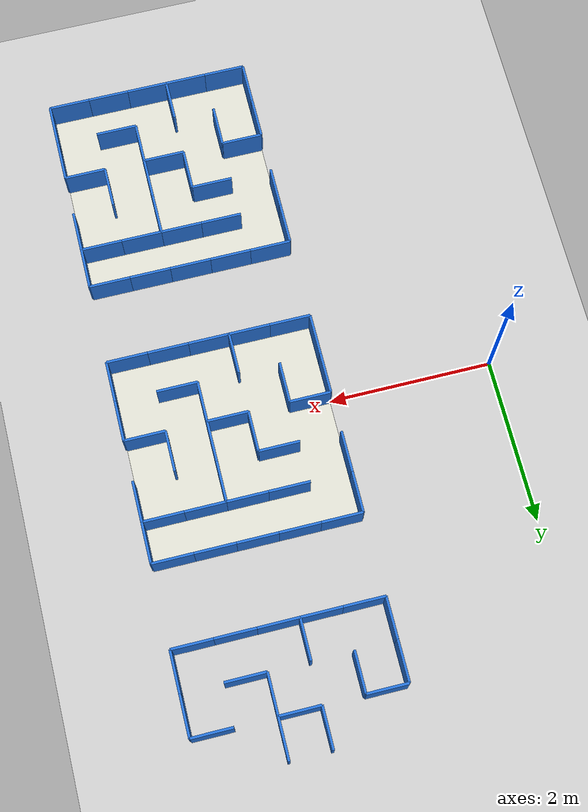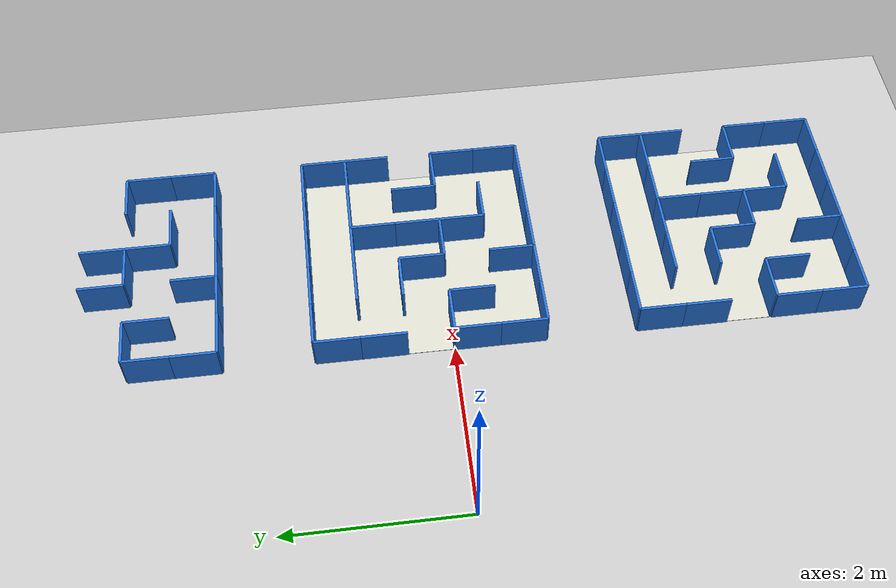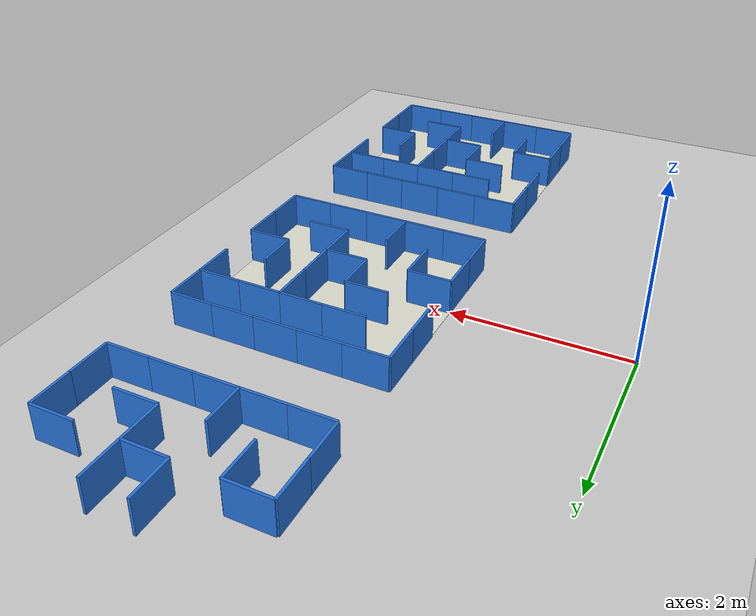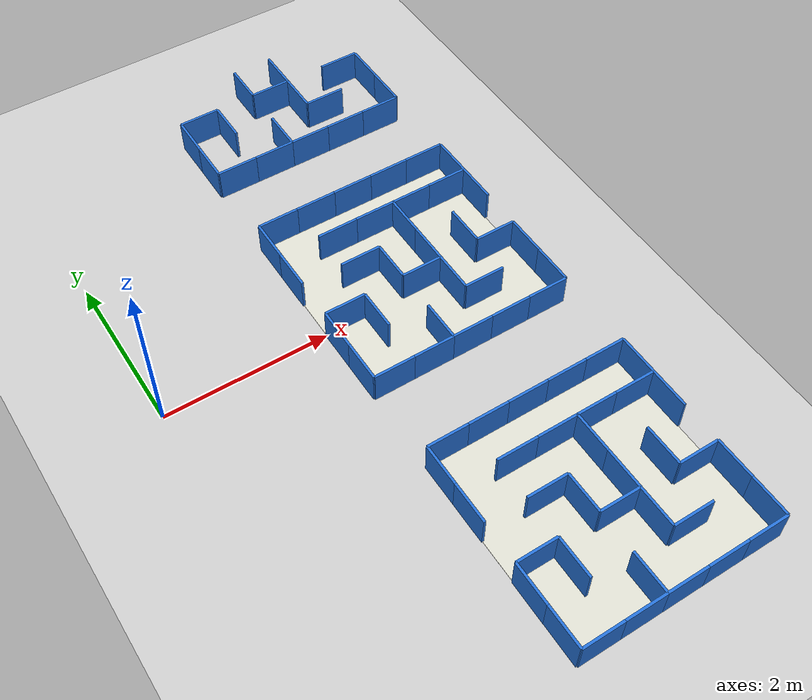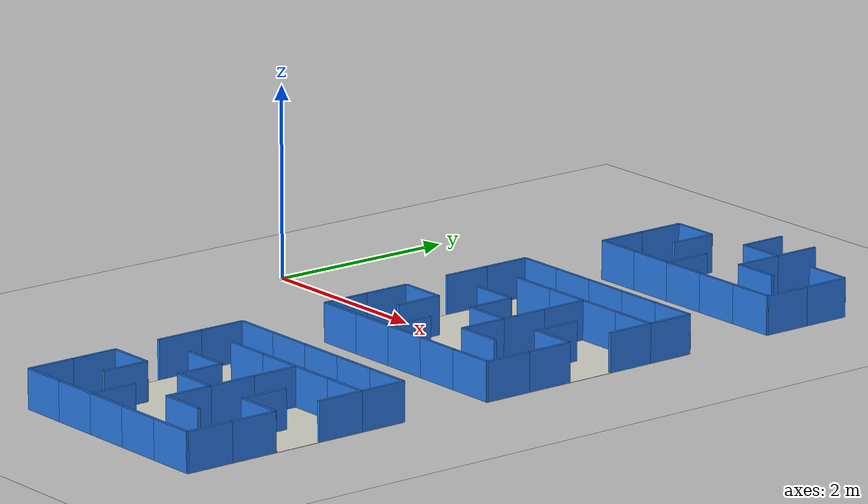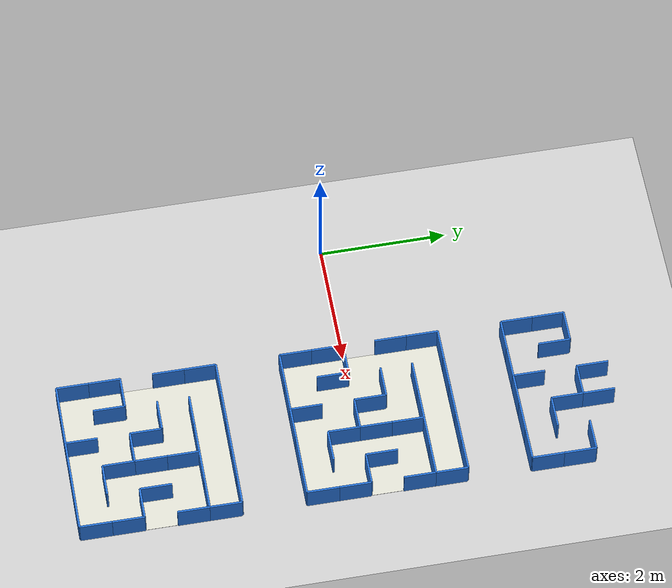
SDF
<sdf version="1.10">
 <world name="nhom8_mecanum">
  <model name="ground_plane">
   <static>true</static>
   <link name="link">
    <collision name="collision">
     <geometry><plane><normal>0 0 1</normal><size>50 50</size></plane></geometry>
     <surface><friction><ode><mu>40</mu></ode></friction></surface>
    </collision>
    <visual name="visual">
     <geometry><plane><normal>0 0 1</normal><size>50 50</size></plane></geometry>
     <material>
      <ambient>0.8 0.8 0.8 1</ambient>
      <diffuse>0.8 0.8 0.8 1</diffuse>
      <specular>0.8 0.8 0.8 1</specular>
     </material>
    </visual>
   </link>
  </model>
  <model name="hw_0_0">
   <static>true</static>
   <pose>2.0000 -4.2500 0.2000 0 0 1.5708</pose>
   <link name="link">
    <collision name="col"><geometry><box><size>0.5000 0.0300 0.4000</size></box></geometry></collision>
    <visual name="vis">
     <geometry><box><size>0.5000 0.0300 0.4000</size></box></geometry>
     <material><ambient>0.15 0.45 0.85 1</ambient><diffuse>0.15 0.45 0.85 1</diffuse></material>
    </visual>
   </link>
  </model>
  <model name="hw_0_1">
   <static>true</static>
   <pose>2.0000 -3.7500 0.2000 0 0 1.5708</pose>
   <link name="link">
    <collision name="col"><geometry><box><size>0.5000 0.0300 0.4000</size></box></geometry></collision>
    <visual name="vis">
     <geometry><box><size>0.5000 0.0300 0.4000</size></box></geometry>
     <material><ambient>0.15 0.45 0.85 1</ambient><diffuse>0.15 0.45 0.85 1</diffuse></material>
    </visual>
   </link>
  </model>
  <model name="hw_0_3">
   <static>true</static>
   <pose>2.0000 -2.7500 0.2000 0 0 1.5708</pose>
   <link name="link">
    <collision name="col"><geometry><box><size>0.5000 0.0300 0.4000</size></box></geometry></collision>
    <visual name="vis">
     <geometry><box><size>0.5000 0.0300 0.4000</size></box></geometry>
     <material><ambient>0.15 0.45 0.85 1</ambient><diffuse>0.15 0.45 0.85 1</diffuse></material>
    </visual>
   </link>
  </model>
  <model name="hw_0_4">
   <static>true</static>
   <pose>2.0000 -2.2500 0.2000 0 0 1.5708</pose>
   <link name="link">
    <collision name="col"><geometry><box><size>0.5000 0.0300 0.4000</size></box></geometry></collision>
    <visual name="vis">
     <geometry><box><size>0.5000 0.0300 0.4000</size></box></geometry>
     <material><ambient>0.15 0.45 0.85 1</ambient><diffuse>0.15 0.45 0.85 1</diffuse></material>
    </visual>
   </link>
  </model>
  <model name="hw_1_1">
   <static>true</static>
   <pose>2.5000 -3.7500 0.2000 0 0 1.5708</pose>
   <link name="link">
    <collision name="col"><geometry><box><size>0.5000 0.0300 0.4000</size></box></geometry></collision>
    <visual name="vis">
     <geometry><box><size>0.5000 0.0300 0.4000</size></box></geometry>
     <material><ambient>0.15 0.45 0.85 1</ambient><diffuse>0.15 0.45 0.85 1</diffuse></material>
    </visual>
   </link>
  </model>
  <model name="hw_2_0">
   <static>true</static>
   <pose>3.0000 -4.2500 0.2000 0 0 1.5708</pose>
   <link name="link">
    <collision name="col"><geometry><box><size>0.5000 0.0300 0.4000</size></box></geometry></collision>
    <visual name="vis">
     <geometry><box><size>0.5000 0.0300 0.4000</size></box></geometry>
     <material><ambient>0.15 0.45 0.85 1</ambient><diffuse>0.15 0.45 0.85 1</diffuse></material>
    </visual>
   </link>
  </model>
  <model name="hw_2_2">
   <static>true</static>
   <pose>3.0000 -3.2500 0.2000 0 0 1.5708</pose>
   <link name="link">
    <collision name="col"><geometry><box><size>0.5000 0.0300 0.4000</size></box></geometry></collision>
    <visual name="vis">
     <geometry><box><size>0.5000 0.0300 0.4000</size></box></geometry>
     <material><ambient>0.15 0.45 0.85 1</ambient><diffuse>0.15 0.45 0.85 1</diffuse></material>
    </visual>
   </link>
  </model>
  <model name="hw_3_1">
   <static>true</static>
   <pose>3.5000 -3.7500 0.2000 0 0 1.5708</pose>
   <link name="link">
    <collision name="col"><geometry><box><size>0.5000 0.0300 0.4000</size></box></geometry></collision>
    <visual name="vis">
     <geometry><box><size>0.5000 0.0300 0.4000</size></box></geometry>
     <material><ambient>0.15 0.45 0.85 1</ambient><diffuse>0.15 0.45 0.85 1</diffuse></material>
    </visual>
   </link>
  </model>
  <model name="hw_3_2">
   <static>true</static>
   <pose>3.5000 -3.2500 0.2000 0 0 1.5708</pose>
   <link name="link">
    <collision name="col"><geometry><box><size>0.5000 0.0300 0.4000</size></box></geometry></collision>
    <visual name="vis">
     <geometry><box><size>0.5000 0.0300 0.4000</size></box></geometry>
     <material><ambient>0.15 0.45 0.85 1</ambient><diffuse>0.15 0.45 0.85 1</diffuse></material>
    </visual>
   </link>
  </model>
  <model name="hw_3_3">
   <static>true</static>
   <pose>3.5000 -2.7500 0.2000 0 0 1.5708</pose>
   <link name="link">
    <collision name="col"><geometry><box><size>0.5000 0.0300 0.4000</size></box></geometry></collision>
    <visual name="vis">
     <geometry><box><size>0.5000 0.0300 0.4000</size></box></geometry>
     <material><ambient>0.15 0.45 0.85 1</ambient><diffuse>0.15 0.45 0.85 1</diffuse></material>
    </visual>
   </link>
  </model>
  <model name="hw_4_2">
   <static>true</static>
   <pose>4.0000 -3.2500 0.2000 0 0 1.5708</pose>
   <link name="link">
    <collision name="col"><geometry><box><size>0.5000 0.0300 0.4000</size></box></geometry></collision>
    <visual name="vis">
     <geometry><box><size>0.5000 0.0300 0.4000</size></box></geometry>
     <material><ambient>0.15 0.45 0.85 1</ambient><diffuse>0.15 0.45 0.85 1</diffuse></material>
    </visual>
   </link>
  </model>
  <model name="hw_5_0">
   <static>true</static>
   <pose>4.5000 -4.2500 0.2000 0 0 1.5708</pose>
   <link name="link">
    <collision name="col"><geometry><box><size>0.5000 0.0300 0.4000</size></box></geometry></collision>
    <visual name="vis">
     <geometry><box><size>0.5000 0.0300 0.4000</size></box></geometry>
     <material><ambient>0.15 0.45 0.85 1</ambient><diffuse>0.15 0.45 0.85 1</diffuse></material>
    </visual>
   </link>
  </model>
  <model name="hw_5_1">
   <static>true</static>
   <pose>4.5000 -3.7500 0.2000 0 0 1.5708</pose>
   <link name="link">
    <collision name="col"><geometry><box><size>0.5000 0.0300 0.4000</size></box></geometry></collision>
    <visual name="vis">
     <geometry><box><size>0.5000 0.0300 0.4000</size></box></geometry>
     <material><ambient>0.15 0.45 0.85 1</ambient><diffuse>0.15 0.45 0.85 1</diffuse></material>
    </visual>
   </link>
  </model>
  <model name="hw_5_3">
   <static>true</static>
   <pose>4.5000 -2.7500 0.2000 0 0 1.5708</pose>
   <link name="link">
    <collision name="col"><geometry><box><size>0.5000 0.0300 0.4000</size></box></geometry></collision>
    <visual name="vis">
     <geometry><box><size>0.5000 0.0300 0.4000</size></box></geometry>
     <material><ambient>0.15 0.45 0.85 1</ambient><diffuse>0.15 0.45 0.85 1</diffuse></material>
    </visual>
   </link>
  </model>
  <model name="hw_5_4">
   <static>true</static>
   <pose>4.5000 -2.2500 0.2000 0 0 1.5708</pose>
   <link name="link">
    <collision name="col"><geometry><box><size>0.5000 0.0300 0.4000</size></box></geometry></collision>
    <visual name="vis">
     <geometry><box><size>0.5000 0.0300 0.4000</size></box></geometry>
     <material><ambient>0.15 0.45 0.85 1</ambient><diffuse>0.15 0.45 0.85 1</diffuse></material>
    </visual>
   </link>
  </model>
  <model name="vw_0_0">
   <static>true</static>
   <pose>2.2500 -4.5000 0.2000 0 0 1.5708</pose>
   <link name="link">
    <collision name="col"><geometry><box><size>0.0300 0.5000 0.4000</size></box></geometry></collision>
    <visual name="vis">
     <geometry><box><size>0.0300 0.5000 0.4000</size></box></geometry>
     <material><ambient>0.15 0.45 0.85 1</ambient><diffuse>0.15 0.45 0.85 1</diffuse></material>
    </visual>
   </link>
  </model>
  <model name="vw_0_2">
   <static>true</static>
   <pose>2.2500 -3.5000 0.2000 0 0 1.5708</pose>
   <link name="link">
    <collision name="col"><geometry><box><size>0.0300 0.5000 0.4000</size></box></geometry></collision>
    <visual name="vis">
     <geometry><box><size>0.0300 0.5000 0.4000</size></box></geometry>
     <material><ambient>0.15 0.45 0.85 1</ambient><diffuse>0.15 0.45 0.85 1</diffuse></material>
    </visual>
   </link>
  </model>
  <model name="vw_0_5">
   <static>true</static>
   <pose>2.2500 -2.0000 0.2000 0 0 1.5708</pose>
   <link name="link">
    <collision name="col"><geometry><box><size>0.0300 0.5000 0.4000</size></box></geometry></collision>
    <visual name="vis">
     <geometry><box><size>0.0300 0.5000 0.4000</size></box></geometry>
     <material><ambient>0.15 0.45 0.85 1</ambient><diffuse>0.15 0.45 0.85 1</diffuse></material>
    </visual>
   </link>
  </model>
  <model name="vw_1_0">
   <static>true</static>
   <pose>2.7500 -4.5000 0.2000 0 0 1.5708</pose>
   <link name="link">
    <collision name="col"><geometry><box><size>0.0300 0.5000 0.4000</size></box></geometry></collision>
    <visual name="vis">
     <geometry><box><size>0.0300 0.5000 0.4000</size></box></geometry>
     <material><ambient>0.15 0.45 0.85 1</ambient><diffuse>0.15 0.45 0.85 1</diffuse></material>
    </visual>
   </link>
  </model>
  <model name="vw_1_3">
   <static>true</static>
   <pose>2.7500 -3.0000 0.2000 0 0 1.5708</pose>
   <link name="link">
    <collision name="col"><geometry><box><size>0.0300 0.5000 0.4000</size></box></geometry></collision>
    <visual name="vis">
     <geometry><box><size>0.0300 0.5000 0.4000</size></box></geometry>
     <material><ambient>0.15 0.45 0.85 1</ambient><diffuse>0.15 0.45 0.85 1</diffuse></material>
    </visual>
   </link>
  </model>
  <model name="vw_1_4">
   <static>true</static>
   <pose>2.7500 -2.5000 0.2000 0 0 1.5708</pose>
   <link name="link">
    <collision name="col"><geometry><box><size>0.0300 0.5000 0.4000</size></box></geometry></collision>
    <visual name="vis">
     <geometry><box><size>0.0300 0.5000 0.4000</size></box></geometry>
     <material><ambient>0.15 0.45 0.85 1</ambient><diffuse>0.15 0.45 0.85 1</diffuse></material>
    </visual>
   </link>
  </model>
  <model name="vw_1_5">
   <static>true</static>
   <pose>2.7500 -2.0000 0.2000 0 0 1.5708</pose>
   <link name="link">
    <collision name="col"><geometry><box><size>0.0300 0.5000 0.4000</size></box></geometry></collision>
    <visual name="vis">
     <geometry><box><size>0.0300 0.5000 0.4000</size></box></geometry>
     <material><ambient>0.15 0.45 0.85 1</ambient><diffuse>0.15 0.45 0.85 1</diffuse></material>
    </visual>
   </link>
  </model>
  <model name="vw_2_0">
   <static>true</static>
   <pose>3.2500 -4.5000 0.2000 0 0 1.5708</pose>
   <link name="link">
    <collision name="col"><geometry><box><size>0.0300 0.5000 0.4000</size></box></geometry></collision>
    <visual name="vis">
     <geometry><box><size>0.0300 0.5000 0.4000</size></box></geometry>
     <material><ambient>0.15 0.45 0.85 1</ambient><diffuse>0.15 0.45 0.85 1</diffuse></material>
    </visual>
   </link>
  </model>
  <model name="vw_2_2">
   <static>true</static>
   <pose>3.2500 -3.5000 0.2000 0 0 1.5708</pose>
   <link name="link">
    <collision name="col"><geometry><box><size>0.0300 0.5000 0.4000</size></box></geometry></collision>
    <visual name="vis">
     <geometry><box><size>0.0300 0.5000 0.4000</size></box></geometry>
     <material><ambient>0.15 0.45 0.85 1</ambient><diffuse>0.15 0.45 0.85 1</diffuse></material>
    </visual>
   </link>
  </model>
  <model name="vw_2_4">
   <static>true</static>
   <pose>3.2500 -2.5000 0.2000 0 0 1.5708</pose>
   <link name="link">
    <collision name="col"><geometry><box><size>0.0300 0.5000 0.4000</size></box></geometry></collision>
    <visual name="vis">
     <geometry><box><size>0.0300 0.5000 0.4000</size></box></geometry>
     <material><ambient>0.15 0.45 0.85 1</ambient><diffuse>0.15 0.45 0.85 1</diffuse></material>
    </visual>
   </link>
  </model>
  <model name="vw_2_5">
   <static>true</static>
   <pose>3.2500 -2.0000 0.2000 0 0 1.5708</pose>
   <link name="link">
    <collision name="col"><geometry><box><size>0.0300 0.5000 0.4000</size></box></geometry></collision>
    <visual name="vis">
     <geometry><box><size>0.0300 0.5000 0.4000</size></box></geometry>
     <material><ambient>0.15 0.45 0.85 1</ambient><diffuse>0.15 0.45 0.85 1</diffuse></material>
    </visual>
   </link>
  </model>
  <model name="vw_3_0">
   <static>true</static>
   <pose>3.7500 -4.5000 0.2000 0 0 1.5708</pose>
   <link name="link">
    <collision name="col"><geometry><box><size>0.0300 0.5000 0.4000</size></box></geometry></collision>
    <visual name="vis">
     <geometry><box><size>0.0300 0.5000 0.4000</size></box></geometry>
     <material><ambient>0.15 0.45 0.85 1</ambient><diffuse>0.15 0.45 0.85 1</diffuse></material>
    </visual>
   </link>
  </model>
  <model name="vw_3_1">
   <static>true</static>
   <pose>3.7500 -4.0000 0.2000 0 0 1.5708</pose>
   <link name="link">
    <collision name="col"><geometry><box><size>0.0300 0.5000 0.4000</size></box></geometry></collision>
    <visual name="vis">
     <geometry><box><size>0.0300 0.5000 0.4000</size></box></geometry>
     <material><ambient>0.15 0.45 0.85 1</ambient><diffuse>0.15 0.45 0.85 1</diffuse></material>
    </visual>
   </link>
  </model>
  <model name="vw_3_4">
   <static>true</static>
   <pose>3.7500 -2.5000 0.2000 0 0 1.5708</pose>
   <link name="link">
    <collision name="col"><geometry><box><size>0.0300 0.5000 0.4000</size></box></geometry></collision>
    <visual name="vis">
     <geometry><box><size>0.0300 0.5000 0.4000</size></box></geometry>
     <material><ambient>0.15 0.45 0.85 1</ambient><diffuse>0.15 0.45 0.85 1</diffuse></material>
    </visual>
   </link>
  </model>
  <model name="vw_3_5">
   <static>true</static>
   <pose>3.7500 -2.0000 0.2000 0 0 1.5708</pose>
   <link name="link">
    <collision name="col"><geometry><box><size>0.0300 0.5000 0.4000</size></box></geometry></collision>
    <visual name="vis">
     <geometry><box><size>0.0300 0.5000 0.4000</size></box></geometry>
     <material><ambient>0.15 0.45 0.85 1</ambient><diffuse>0.15 0.45 0.85 1</diffuse></material>
    </visual>
   </link>
  </model>
  <model name="vw_4_0">
   <static>true</static>
   <pose>4.2500 -4.5000 0.2000 0 0 1.5708</pose>
   <link name="link">
    <collision name="col"><geometry><box><size>0.0300 0.5000 0.4000</size></box></geometry></collision>
    <visual name="vis">
     <geometry><box><size>0.0300 0.5000 0.4000</size></box></geometry>
     <material><ambient>0.15 0.45 0.85 1</ambient><diffuse>0.15 0.45 0.85 1</diffuse></material>
    </visual>
   </link>
  </model>
  <model name="vw_4_2">
   <static>true</static>
   <pose>4.2500 -3.5000 0.2000 0 0 1.5708</pose>
   <link name="link">
    <collision name="col"><geometry><box><size>0.0300 0.5000 0.4000</size></box></geometry></collision>
    <visual name="vis">
     <geometry><box><size>0.0300 0.5000 0.4000</size></box></geometry>
     <material><ambient>0.15 0.45 0.85 1</ambient><diffuse>0.15 0.45 0.85 1</diffuse></material>
    </visual>
   </link>
  </model>
  <model name="vw_4_4">
   <static>true</static>
   <pose>4.2500 -2.5000 0.2000 0 0 1.5708</pose>
   <link name="link">
    <collision name="col"><geometry><box><size>0.0300 0.5000 0.4000</size></box></geometry></collision>
    <visual name="vis">
     <geometry><box><size>0.0300 0.5000 0.4000</size></box></geometry>
     <material><ambient>0.15 0.45 0.85 1</ambient><diffuse>0.15 0.45 0.85 1</diffuse></material>
    </visual>
   </link>
  </model>
  <model name="vw_4_5">
   <static>true</static>
   <pose>4.2500 -2.0000 0.2000 0 0 1.5708</pose>
   <link name="link">
    <collision name="col"><geometry><box><size>0.0300 0.5000 0.4000</size></box></geometry></collision>
    <visual name="vis">
     <geometry><box><size>0.0300 0.5000 0.4000</size></box></geometry>
     <material><ambient>0.15 0.45 0.85 1</ambient><diffuse>0.15 0.45 0.85 1</diffuse></material>
    </visual>
   </link>
  </model>
  <model name="floor">
   <static>true</static>
   <pose>3.2500 -3.2500 -0.02 0 0 1.5708</pose>
   <link name="link">
    <collision name="col"><geometry><box><size>2.50 2.50 0.03</size></box></geometry></collision>
    <visual name="vis">
     <geometry><box><size>2.50 2.50 0.03</size></box></geometry>
     <material><ambient>0.87 0.87 0.82 1</ambient><diffuse>0.87 0.87 0.82 1</diffuse></material>
    </visual>
   </link>
  </model>
  <model name="hw_0_0_m1">
   <static>true</static>
   <pose>2.0000 -0.750000 0.2000 0 0 1.5708</pose>
   <link name="link">
    <collision name="col"><geometry><box><size>0.5000 0.0300 0.4000</size></box></geometry></collision>
    <visual name="vis">
     <geometry><box><size>0.5000 0.0300 0.4000</size></box></geometry>
     <material><ambient>0.15 0.45 0.85 1</ambient><diffuse>0.15 0.45 0.85 1</diffuse></material>
    </visual>
   </link>
  </model>
  <model name="hw_0_1_m1">
   <static>true</static>
   <pose>2.0000 -0.250000 0.2000 0 0 1.5708</pose>
   <link name="link">
    <collision name="col"><geometry><box><size>0.5000 0.0300 0.4000</size></box></geometry></collision>
    <visual name="vis">
     <geometry><box><size>0.5000 0.0300 0.4000</size></box></geometry>
     <material><ambient>0.15 0.45 0.85 1</ambient><diffuse>0.15 0.45 0.85 1</diffuse></material>
    </visual>
   </link>
  </model>
  <model name="hw_0_3_m1">
   <static>true</static>
   <pose>2.0000 0.750000 0.2000 0 0 1.5708</pose>
   <link name="link">
    <collision name="col"><geometry><box><size>0.5000 0.0300 0.4000</size></box></geometry></collision>
    <visual name="vis">
     <geometry><box><size>0.5000 0.0300 0.4000</size></box></geometry>
     <material><ambient>0.15 0.45 0.85 1</ambient><diffuse>0.15 0.45 0.85 1</diffuse></material>
    </visual>
   </link>
  </model>
  <model name="hw_0_4_m1">
   <static>true</static>
   <pose>2.0000 1.250000 0.2000 0 0 1.5708</pose>
   <link name="link">
    <collision name="col"><geometry><box><size>0.5000 0.0300 0.4000</size></box></geometry></collision>
    <visual name="vis">
     <geometry><box><size>0.5000 0.0300 0.4000</size></box></geometry>
     <material><ambient>0.15 0.45 0.85 1</ambient><diffuse>0.15 0.45 0.85 1</diffuse></material>
    </visual>
   </link>
  </model>
  <model name="hw_1_1_m1">
   <static>true</static>
   <pose>2.5000 -0.250000 0.2000 0 0 1.5708</pose>
   <link name="link">
    <collision name="col"><geometry><box><size>0.5000 0.0300 0.4000</size></box></geometry></collision>
    <visual name="vis">
     <geometry><box><size>0.5000 0.0300 0.4000</size></box></geometry>
     <material><ambient>0.15 0.45 0.85 1</ambient><diffuse>0.15 0.45 0.85 1</diffuse></material>
    </visual>
   </link>
  </model>
  <model name="hw_2_0_m1">
   <static>true</static>
   <pose>3.0000 -0.750000 0.2000 0 0 1.5708</pose>
   <link name="link">
    <collision name="col"><geometry><box><size>0.5000 0.0300 0.4000</size></box></geometry></collision>
    <visual name="vis">
     <geometry><box><size>0.5000 0.0300 0.4000</size></box></geometry>
     <material><ambient>0.15 0.45 0.85 1</ambient><diffuse>0.15 0.45 0.85 1</diffuse></material>
    </visual>
   </link>
  </model>
  <model name="hw_2_2_m1">
   <static>true</static>
   <pose>3.0000 0.250000 0.2000 0 0 1.5708</pose>
   <link name="link">
    <collision name="col"><geometry><box><size>0.5000 0.0300 0.4000</size></box></geometry></collision>
    <visual name="vis">
     <geometry><box><size>0.5000 0.0300 0.4000</size></box></geometry>
     <material><ambient>0.15 0.45 0.85 1</ambient><diffuse>0.15 0.45 0.85 1</diffuse></material>
    </visual>
   </link>
  </model>
  <model name="hw_3_1_m1">
   <static>true</static>
   <pose>3.5000 -0.250000 0.2000 0 0 1.5708</pose>
   <link name="link">
    <collision name="col"><geometry><box><size>0.5000 0.0300 0.4000</size></box></geometry></collision>
    <visual name="vis">
     <geometry><box><size>0.5000 0.0300 0.4000</size></box></geometry>
     <material><ambient>0.15 0.45 0.85 1</ambient><diffuse>0.15 0.45 0.85 1</diffuse></material>
    </visual>
   </link>
  </model>
  <model name="hw_3_2_m1">
   <static>true</static>
   <pose>3.5000 0.250000 0.2000 0 0 1.5708</pose>
   <link name="link">
    <collision name="col"><geometry><box><size>0.5000 0.0300 0.4000</size></box></geometry></collision>
    <visual name="vis">
     <geometry><box><size>0.5000 0.0300 0.4000</size></box></geometry>
     <material><ambient>0.15 0.45 0.85 1</ambient><diffuse>0.15 0.45 0.85 1</diffuse></material>
    </visual>
   </link>
  </model>
  <model name="hw_3_3_m1">
   <static>true</static>
   <pose>3.5000 0.750000 0.2000 0 0 1.5708</pose>
   <link name="link">
    <collision name="col"><geometry><box><size>0.5000 0.0300 0.4000</size></box></geometry></collision>
    <visual name="vis">
     <geometry><box><size>0.5000 0.0300 0.4000</size></box></geometry>
     <material><ambient>0.15 0.45 0.85 1</ambient><diffuse>0.15 0.45 0.85 1</diffuse></material>
    </visual>
   </link>
  </model>
  <model name="hw_4_2_m1">
   <static>true</static>
   <pose>4.0000 0.250000 0.2000 0 0 1.5708</pose>
   <link name="link">
    <collision name="col"><geometry><box><size>0.5000 0.0300 0.4000</size></box></geometry></collision>
    <visual name="vis">
     <geometry><box><size>0.5000 0.0300 0.4000</size></box></geometry>
     <material><ambient>0.15 0.45 0.85 1</ambient><diffuse>0.15 0.45 0.85 1</diffuse></material>
    </visual>
   </link>
  </model>
  <model name="hw_5_0_m1">
   <static>true</static>
   <pose>4.5000 -0.750000 0.2000 0 0 1.5708</pose>
   <link name="link">
    <collision name="col"><geometry><box><size>0.5000 0.0300 0.4000</size></box></geometry></collision>
    <visual name="vis">
     <geometry><box><size>0.5000 0.0300 0.4000</size></box></geometry>
     <material><ambient>0.15 0.45 0.85 1</ambient><diffuse>0.15 0.45 0.85 1</diffuse></material>
    </visual>
   </link>
  </model>
  <model name="hw_5_1_m1">
   <static>true</static>
   <pose>4.5000 -0.250000 0.2000 0 0 1.5708</pose>
   <link name="link">
    <collision name="col"><geometry><box><size>0.5000 0.0300 0.4000</size></box></geometry></collision>
    <visual name="vis">
     <geometry><box><size>0.5000 0.0300 0.4000</size></box></geometry>
     <material><ambient>0.15 0.45 0.85 1</ambient><diffuse>0.15 0.45 0.85 1</diffuse></material>
    </visual>
   </link>
  </model>
  <model name="hw_5_3_m1">
   <static>true</static>
   <pose>4.5000 0.750000 0.2000 0 0 1.5708</pose>
   <link name="link">
    <collision name="col"><geometry><box><size>0.5000 0.0300 0.4000</size></box></geometry></collision>
    <visual name="vis">
     <geometry><box><size>0.5000 0.0300 0.4000</size></box></geometry>
     <material><ambient>0.15 0.45 0.85 1</ambient><diffuse>0.15 0.45 0.85 1</diffuse></material>
    </visual>
   </link>
  </model>
  <model name="hw_5_4_m1">
   <static>true</static>
   <pose>4.5000 1.250000 0.2000 0 0 1.5708</pose>
   <link name="link">
    <collision name="col"><geometry><box><size>0.5000 0.0300 0.4000</size></box></geometry></collision>
    <visual name="vis">
     <geometry><box><size>0.5000 0.0300 0.4000</size></box></geometry>
     <material><ambient>0.15 0.45 0.85 1</ambient><diffuse>0.15 0.45 0.85 1</diffuse></material>
    </visual>
   </link>
  </model>
  <model name="vw_0_0_m1">
   <static>true</static>
   <pose>2.2500 -1.000000 0.2000 0 0 1.5708</pose>
   <link name="link">
    <collision name="col"><geometry><box><size>0.0300 0.5000 0.4000</size></box></geometry></collision>
    <visual name="vis">
     <geometry><box><size>0.0300 0.5000 0.4000</size></box></geometry>
     <material><ambient>0.15 0.45 0.85 1</ambient><diffuse>0.15 0.45 0.85 1</diffuse></material>
    </visual>
   </link>
  </model>
  <model name="vw_0_2_m1">
   <static>true</static>
   <pose>2.2500 0.000000 0.2000 0 0 1.5708</pose>
   <link name="link">
    <collision name="col"><geometry><box><size>0.0300 0.5000 0.4000</size></box></geometry></collision>
    <visual name="vis">
     <geometry><box><size>0.0300 0.5000 0.4000</size></box></geometry>
     <material><ambient>0.15 0.45 0.85 1</ambient><diffuse>0.15 0.45 0.85 1</diffuse></material>
    </visual>
   </link>
  </model>
  <model name="vw_0_5_m1">
   <static>true</static>
   <pose>2.2500 1.500000 0.2000 0 0 1.5708</pose>
   <link name="link">
    <collision name="col"><geometry><box><size>0.0300 0.5000 0.4000</size></box></geometry></collision>
    <visual name="vis">
     <geometry><box><size>0.0300 0.5000 0.4000</size></box></geometry>
     <material><ambient>0.15 0.45 0.85 1</ambient><diffuse>0.15 0.45 0.85 1</diffuse></material>
    </visual>
   </link>
  </model>
  <model name="vw_1_0_m1">
   <static>true</static>
   <pose>2.7500 -1.000000 0.2000 0 0 1.5708</pose>
   <link name="link">
    <collision name="col"><geometry><box><size>0.0300 0.5000 0.4000</size></box></geometry></collision>
    <visual name="vis">
     <geometry><box><size>0.0300 0.5000 0.4000</size></box></geometry>
     <material><ambient>0.15 0.45 0.85 1</ambient><diffuse>0.15 0.45 0.85 1</diffuse></material>
    </visual>
   </link>
  </model>
  <model name="vw_1_3_m1">
   <static>true</static>
   <pose>2.7500 0.500000 0.2000 0 0 1.5708</pose>
   <link name="link">
    <collision name="col"><geometry><box><size>0.0300 0.5000 0.4000</size></box></geometry></collision>
    <visual name="vis">
     <geometry><box><size>0.0300 0.5000 0.4000</size></box></geometry>
     <material><ambient>0.15 0.45 0.85 1</ambient><diffuse>0.15 0.45 0.85 1</diffuse></material>
    </visual>
   </link>
  </model>
  <model name="vw_1_4_m1">
   <static>true</static>
   <pose>2.7500 1.000000 0.2000 0 0 1.5708</pose>
   <link name="link">
    <collision name="col"><geometry><box><size>0.0300 0.5000 0.4000</size></box></geometry></collision>
    <visual name="vis">
     <geometry><box><size>0.0300 0.5000 0.4000</size></box></geometry>
     <material><ambient>0.15 0.45 0.85 1</ambient><diffuse>0.15 0.45 0.85 1</diffuse></material>
    </visual>
   </link>
  </model>
  <model name="vw_1_5_m1">
   <static>true</static>
   <pose>2.7500 1.500000 0.2000 0 0 1.5708</pose>
   <link name="link">
    <collision name="col"><geometry><box><size>0.0300 0.5000 0.4000</size></box></geometry></collision>
    <visual name="vis">
     <geometry><box><size>0.0300 0.5000 0.4000</size></box></geometry>
     <material><ambient>0.15 0.45 0.85 1</ambient><diffuse>0.15 0.45 0.85 1</diffuse></material>
    </visual>
   </link>
  </model>
  <model name="vw_2_0_m1">
   <static>true</static>
   <pose>3.2500 -1.000000 0.2000 0 0 1.5708</pose>
   <link name="link">
    <collision name="col"><geometry><box><size>0.0300 0.5000 0.4000</size></box></geometry></collision>
    <visual name="vis">
     <geometry><box><size>0.0300 0.5000 0.4000</size></box></geometry>
     <material><ambient>0.15 0.45 0.85 1</ambient><diffuse>0.15 0.45 0.85 1</diffuse></material>
    </visual>
   </link>
  </model>
  <model name="vw_2_2_m1">
   <static>true</static>
   <pose>3.2500 0.000000 0.2000 0 0 1.5708</pose>
   <link name="link">
    <collision name="col"><geometry><box><size>0.0300 0.5000 0.4000</size></box></geometry></collision>
    <visual name="vis">
     <geometry><box><size>0.0300 0.5000 0.4000</size></box></geometry>
     <material><ambient>0.15 0.45 0.85 1</ambient><diffuse>0.15 0.45 0.85 1</diffuse></material>
    </visual>
   </link>
  </model>
  <model name="vw_2_4_m1">
   <static>true</static>
   <pose>3.2500 1.000000 0.2000 0 0 1.5708</pose>
   <link name="link">
    <collision name="col"><geometry><box><size>0.0300 0.5000 0.4000</size></box></geometry></collision>
    <visual name="vis">
     <geometry><box><size>0.0300 0.5000 0.4000</size></box></geometry>
     <material><ambient>0.15 0.45 0.85 1</ambient><diffuse>0.15 0.45 0.85 1</diffuse></material>
    </visual>
   </link>
  </model>
  <model name="vw_2_5_m1">
   <static>true</static>
   <pose>3.2500 1.500000 0.2000 0 0 1.5708</pose>
   <link name="link">
    <collision name="col"><geometry><box><size>0.0300 0.5000 0.4000</size></box></geometry></collision>
    <visual name="vis">
     <geometry><box><size>0.0300 0.5000 0.4000</size></box></geometry>
     <material><ambient>0.15 0.45 0.85 1</ambient><diffuse>0.15 0.45 0.85 1</diffuse></material>
    </visual>
   </link>
  </model>
  <model name="vw_3_0_m1">
   <static>true</static>
   <pose>3.7500 -1.000000 0.2000 0 0 1.5708</pose>
   <link name="link">
    <collision name="col"><geometry><box><size>0.0300 0.5000 0.4000</size></box></geometry></collision>
    <visual name="vis">
     <geometry><box><size>0.0300 0.5000 0.4000</size></box></geometry>
     <material><ambient>0.15 0.45 0.85 1</ambient><diffuse>0.15 0.45 0.85 1</diffuse></material>
    </visual>
   </link>
  </model>
  <model name="vw_3_1_m1">
   <static>true</static>
   <pose>3.7500 -0.500000 0.2000 0 0 1.5708</pose>
   <link name="link">
    <collision name="col"><geometry><box><size>0.0300 0.5000 0.4000</size></box></geometry></collision>
    <visual name="vis">
     <geometry><box><size>0.0300 0.5000 0.4000</size></box></geometry>
     <material><ambient>0.15 0.45 0.85 1</ambient><diffuse>0.15 0.45 0.85 1</diffuse></material>
    </visual>
   </link>
  </model>
  <model name="vw_3_4_m1">
   <static>true</static>
   <pose>3.7500 1.000000 0.2000 0 0 1.5708</pose>
   <link name="link">
    <collision name="col"><geometry><box><size>0.0300 0.5000 0.4000</size></box></geometry></collision>
    <visual name="vis">
     <geometry><box><size>0.0300 0.5000 0.4000</size></box></geometry>
     <material><ambient>0.15 0.45 0.85 1</ambient><diffuse>0.15 0.45 0.85 1</diffuse></material>
    </visual>
   </link>
  </model>
  <model name="vw_3_5_m1">
   <static>true</static>
   <pose>3.7500 1.500000 0.2000 0 0 1.5708</pose>
   <link name="link">
    <collision name="col"><geometry><box><size>0.0300 0.5000 0.4000</size></box></geometry></collision>
    <visual name="vis">
     <geometry><box><size>0.0300 0.5000 0.4000</size></box></geometry>
     <material><ambient>0.15 0.45 0.85 1</ambient><diffuse>0.15 0.45 0.85 1</diffuse></material>
    </visual>
   </link>
  </model>
  <model name="vw_4_0_m1">
   <static>true</static>
   <pose>4.2500 -1.000000 0.2000 0 0 1.5708</pose>
   <link name="link">
    <collision name="col"><geometry><box><size>0.0300 0.5000 0.4000</size></box></geometry></collision>
    <visual name="vis">
     <geometry><box><size>0.0300 0.5000 0.4000</size></box></geometry>
     <material><ambient>0.15 0.45 0.85 1</ambient><diffuse>0.15 0.45 0.85 1</diffuse></material>
    </visual>
   </link>
  </model>
  <model name="vw_4_2_m1">
   <static>true</static>
   <pose>4.2500 0.000000 0.2000 0 0 1.5708</pose>
   <link name="link">
    <collision name="col"><geometry><box><size>0.0300 0.5000 0.4000</size></box></geometry></collision>
    <visual name="vis">
     <geometry><box><size>0.0300 0.5000 0.4000</size></box></geometry>
     <material><ambient>0.15 0.45 0.85 1</ambient><diffuse>0.15 0.45 0.85 1</diffuse></material>
    </visual>
   </link>
  </model>
  <model name="vw_4_4_m1">
   <static>true</static>
   <pose>4.2500 1.000000 0.2000 0 0 1.5708</pose>
   <link name="link">
    <collision name="col"><geometry><box><size>0.0300 0.5000 0.4000</size></box></geometry></collision>
    <visual name="vis">
     <geometry><box><size>0.0300 0.5000 0.4000</size></box></geometry>
     <material><ambient>0.15 0.45 0.85 1</ambient><diffuse>0.15 0.45 0.85 1</diffuse></material>
    </visual>
   </link>
  </model>
  <model name="vw_4_5_m1">
   <static>true</static>
   <pose>4.2500 1.500000 0.2000 0 0 1.5708</pose>
   <link name="link">
    <collision name="col"><geometry><box><size>0.0300 0.5000 0.4000</size></box></geometry></collision>
    <visual name="vis">
     <geometry><box><size>0.0300 0.5000 0.4000</size></box></geometry>
     <material><ambient>0.15 0.45 0.85 1</ambient><diffuse>0.15 0.45 0.85 1</diffuse></material>
    </visual>
   </link>
  </model>
  <model name="floor_m1">
   <static>true</static>
   <pose>3.2500 0.250000 -0.02 0 0 1.5708</pose>
   <link name="link">
    <collision name="col"><geometry><box><size>2.50 2.50 0.03</size></box></geometry></collision>
    <visual name="vis">
     <geometry><box><size>2.50 2.50 0.03</size></box></geometry>
     <material><ambient>0.87 0.87 0.82 1</ambient><diffuse>0.87 0.87 0.82 1</diffuse></material>
    </visual>
   </link>
  </model>
  <model name="hw_0_0_m2">
   <static>true</static>
   <pose>2.0000 2.750000 0.2000 0 0 1.5708</pose>
   <link name="link">
    <collision name="col"><geometry><box><size>0.5000 0.0300 0.4000</size></box></geometry></collision>
    <visual name="vis">
     <geometry><box><size>0.5000 0.0300 0.4000</size></box></geometry>
     <material><ambient>0.15 0.45 0.85 1</ambient><diffuse>0.15 0.45 0.85 1</diffuse></material>
    </visual>
   </link>
  </model>
  <model name="hw_0_1_m2">
   <static>true</static>
   <pose>2.0000 3.250000 0.2000 0 0 1.5708</pose>
   <link name="link">
    <collision name="col"><geometry><box><size>0.5000 0.0300 0.4000</size></box></geometry></collision>
    <visual name="vis">
     <geometry><box><size>0.5000 0.0300 0.4000</size></box></geometry>
     <material><ambient>0.15 0.45 0.85 1</ambient><diffuse>0.15 0.45 0.85 1</diffuse></material>
    </visual>
   </link>
  </model>
  <model name="hw_1_1_m2">
   <static>true</static>
   <pose>2.5000 3.250000 0.2000 0 0 1.5708</pose>
   <link name="link">
    <collision name="col"><geometry><box><size>0.5000 0.0300 0.4000</size></box></geometry></collision>
    <visual name="vis">
     <geometry><box><size>0.5000 0.0300 0.4000</size></box></geometry>
     <material><ambient>0.15 0.45 0.85 1</ambient><diffuse>0.15 0.45 0.85 1</diffuse></material>
    </visual>
   </link>
  </model>
  <model name="hw_2_0_m2">
   <static>true</static>
   <pose>3.0000 2.750000 0.2000 0 0 1.5708</pose>
   <link name="link">
    <collision name="col"><geometry><box><size>0.5000 0.0300 0.4000</size></box></geometry></collision>
    <visual name="vis">
     <geometry><box><size>0.5000 0.0300 0.4000</size></box></geometry>
     <material><ambient>0.15 0.45 0.85 1</ambient><diffuse>0.15 0.45 0.85 1</diffuse></material>
    </visual>
   </link>
  </model>
  <model name="hw_2_2_m2">
   <static>true</static>
   <pose>3.0000 3.750000 0.2000 0 0 1.5708</pose>
   <link name="link">
    <collision name="col"><geometry><box><size>0.5000 0.0300 0.4000</size></box></geometry></collision>
    <visual name="vis">
     <geometry><box><size>0.5000 0.0300 0.4000</size></box></geometry>
     <material><ambient>0.15 0.45 0.85 1</ambient><diffuse>0.15 0.45 0.85 1</diffuse></material>
    </visual>
   </link>
  </model>
  <model name="hw_3_1_m2">
   <static>true</static>
   <pose>3.5000 3.250000 0.2000 0 0 1.5708</pose>
   <link name="link">
    <collision name="col"><geometry><box><size>0.5000 0.0300 0.4000</size></box></geometry></collision>
    <visual name="vis">
     <geometry><box><size>0.5000 0.0300 0.4000</size></box></geometry>
     <material><ambient>0.15 0.45 0.85 1</ambient><diffuse>0.15 0.45 0.85 1</diffuse></material>
    </visual>
   </link>
  </model>
  <model name="hw_3_2_m2">
   <static>true</static>
   <pose>3.5000 3.750000 0.2000 0 0 1.5708</pose>
   <link name="link">
    <collision name="col"><geometry><box><size>0.5000 0.0300 0.4000</size></box></geometry></collision>
    <visual name="vis">
     <geometry><box><size>0.5000 0.0300 0.4000</size></box></geometry>
     <material><ambient>0.15 0.45 0.85 1</ambient><diffuse>0.15 0.45 0.85 1</diffuse></material>
    </visual>
   </link>
  </model>
  <model name="hw_5_0_m2">
   <static>true</static>
   <pose>4.5000 2.750000 0.2000 0 0 1.5708</pose>
   <link name="link">
    <collision name="col"><geometry><box><size>0.5000 0.0300 0.4000</size></box></geometry></collision>
    <visual name="vis">
     <geometry><box><size>0.5000 0.0300 0.4000</size></box></geometry>
     <material><ambient>0.15 0.45 0.85 1</ambient><diffuse>0.15 0.45 0.85 1</diffuse></material>
    </visual>
   </link>
  </model>
  <model name="hw_5_1_m2">
   <static>true</static>
   <pose>4.5000 3.250000 0.2000 0 0 1.5708</pose>
   <link name="link">
    <collision name="col"><geometry><box><size>0.5000 0.0300 0.4000</size></box></geometry></collision>
    <visual name="vis">
     <geometry><box><size>0.5000 0.0300 0.4000</size></box></geometry>
     <material><ambient>0.15 0.45 0.85 1</ambient><diffuse>0.15 0.45 0.85 1</diffuse></material>
    </visual>
   </link>
  </model>
  <model name="vw_0_0_m2">
   <static>true</static>
   <pose>2.2500 2.500000 0.2000 0 0 1.5708</pose>
   <link name="link">
    <collision name="col"><geometry><box><size>0.0300 0.5000 0.4000</size></box></geometry></collision>
    <visual name="vis">
     <geometry><box><size>0.0300 0.5000 0.4000</size></box></geometry>
     <material><ambient>0.15 0.45 0.85 1</ambient><diffuse>0.15 0.45 0.85 1</diffuse></material>
    </visual>
   </link>
  </model>
  <model name="vw_0_2_m2">
   <static>true</static>
   <pose>2.2500 3.500000 0.2000 0 0 1.5708</pose>
   <link name="link">
    <collision name="col"><geometry><box><size>0.0300 0.5000 0.4000</size></box></geometry></collision>
    <visual name="vis">
     <geometry><box><size>0.0300 0.5000 0.4000</size></box></geometry>
     <material><ambient>0.15 0.45 0.85 1</ambient><diffuse>0.15 0.45 0.85 1</diffuse></material>
    </visual>
   </link>
  </model>
  <model name="vw_1_0_m2">
   <static>true</static>
   <pose>2.7500 2.500000 0.2000 0 0 1.5708</pose>
   <link name="link">
    <collision name="col"><geometry><box><size>0.0300 0.5000 0.4000</size></box></geometry></collision>
    <visual name="vis">
     <geometry><box><size>0.0300 0.5000 0.4000</size></box></geometry>
     <material><ambient>0.15 0.45 0.85 1</ambient><diffuse>0.15 0.45 0.85 1</diffuse></material>
    </visual>
   </link>
  </model>
  <model name="vw_2_0_m2">
   <static>true</static>
   <pose>3.2500 2.500000 0.2000 0 0 1.5708</pose>
   <link name="link">
    <collision name="col"><geometry><box><size>0.0300 0.5000 0.4000</size></box></geometry></collision>
    <visual name="vis">
     <geometry><box><size>0.0300 0.5000 0.4000</size></box></geometry>
     <material><ambient>0.15 0.45 0.85 1</ambient><diffuse>0.15 0.45 0.85 1</diffuse></material>
    </visual>
   </link>
  </model>
  <model name="vw_2_2_m2">
   <static>true</static>
   <pose>3.2500 3.500000 0.2000 0 0 1.5708</pose>
   <link name="link">
    <collision name="col"><geometry><box><size>0.0300 0.5000 0.4000</size></box></geometry></collision>
    <visual name="vis">
     <geometry><box><size>0.0300 0.5000 0.4000</size></box></geometry>
     <material><ambient>0.15 0.45 0.85 1</ambient><diffuse>0.15 0.45 0.85 1</diffuse></material>
    </visual>
   </link>
  </model>
  <model name="vw_3_0_m2">
   <static>true</static>
   <pose>3.7500 2.500000 0.2000 0 0 1.5708</pose>
   <link name="link">
    <collision name="col"><geometry><box><size>0.0300 0.5000 0.4000</size></box></geometry></collision>
    <visual name="vis">
     <geometry><box><size>0.0300 0.5000 0.4000</size></box></geometry>
     <material><ambient>0.15 0.45 0.85 1</ambient><diffuse>0.15 0.45 0.85 1</diffuse></material>
    </visual>
   </link>
  </model>
  <model name="vw_3_1_m2">
   <static>true</static>
   <pose>3.7500 3.000000 0.2000 0 0 1.5708</pose>
   <link name="link">
    <collision name="col"><geometry><box><size>0.0300 0.5000 0.4000</size></box></geometry></collision>
    <visual name="vis">
     <geometry><box><size>0.0300 0.5000 0.4000</size></box></geometry>
     <material><ambient>0.15 0.45 0.85 1</ambient><diffuse>0.15 0.45 0.85 1</diffuse></material>
    </visual>
   </link>
  </model>
  <model name="vw_4_0_m2">
   <static>true</static>
   <pose>4.2500 2.500000 0.2000 0 0 1.5708</pose>
   <link name="link">
    <collision name="col"><geometry><box><size>0.0300 0.5000 0.4000</size></box></geometry></collision>
    <visual name="vis">
     <geometry><box><size>0.0300 0.5000 0.4000</size></box></geometry>
     <material><ambient>0.15 0.45 0.85 1</ambient><diffuse>0.15 0.45 0.85 1</diffuse></material>
    </visual>
   </link>
  </model>
  <model name="vw_4_2_m2">
   <static>true</static>
   <pose>4.2500 3.500000 0.2000 0 0 1.5708</pose>
   <link name="link">
    <collision name="col"><geometry><box><size>0.0300 0.5000 0.4000</size></box></geometry></collision>
    <visual name="vis">
     <geometry><box><size>0.0300 0.5000 0.4000</size></box></geometry>
     <material><ambient>0.15 0.45 0.85 1</ambient><diffuse>0.15 0.45 0.85 1</diffuse></material>
    </visual>
   </link>
  </model>
 </world>
</sdf>
